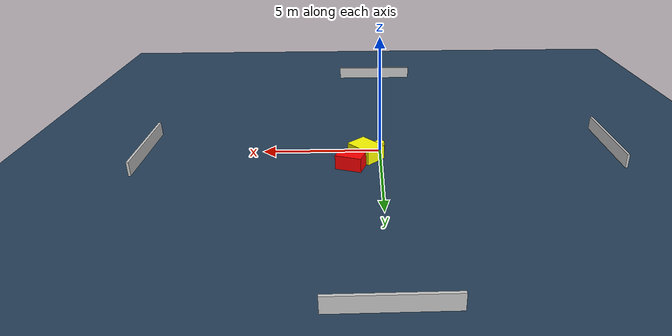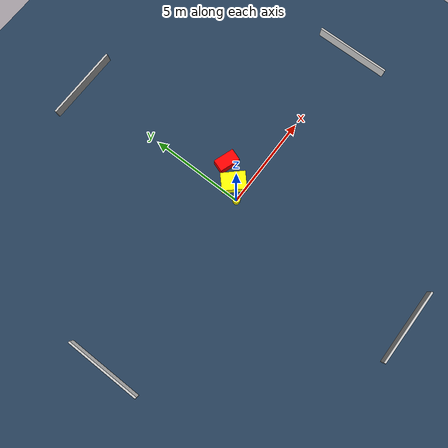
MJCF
<?xml version="1.0" ?>
<mujoco model="generated_environment">
  <option timestep="0.01" integrator="RK4" cone="elliptic"/>
  <default>
    <geom density="1"/>
  </default>
  <asset>
    <texture builtin="gradient" height="3072" name="skybox" rgb1="0.3 0.5 0.7" rgb2="0 0 0" type="skybox" width="512"/>
    <texture builtin="checker" height="300" name="groundplane" rgb1="0.2 0.3 0.4" rgb2="0.1 0.2 0.3" type="2d" width="300"/>
    <material name="groundplane" reflectance="0.2" texrepeat="5 5" texture="groundplane"/>
  </asset>
  <worldbody>
    <light dir="0 0 -1" directional="true" pos="0 0 1.5"/>
    <geom condim="3" friction="0.5 0.005 0.001" material="groundplane" name="floor" pos="0 0 0" size="0 0 0.05" type="plane"/>
    <body name="walls">
      <geom name="wall_1" condim="4" pos="-10.0 0.0 0.3" rgba="0.800000011920929 0.800000011920929 0.800000011920929 1.0" size="0.05 2.0 0.3" type="box"/>
      <geom name="wall_2" condim="4" pos="10.0 0.0 0.3" rgba="0.800000011920929 0.800000011920929 0.800000011920929 1.0" size="0.05 2.0 0.3" type="box"/>
      <geom name="wall_3" condim="4" pos="0.0 -10.0 0.3" rgba="0.800000011920929 0.800000011920929 0.800000011920929 1.0" size="2.0 0.05 0.3" type="box"/>
      <geom name="wall_4" condim="4" pos="0.0 10.0 0.3" rgba="0.800000011920929 0.800000011920929 0.800000011920929 1.0" size="2.0 0.05 0.3" type="box"/>
    </body>
    <body name="robot">
      <joint name="joint_x" type="slide" pos="0 0 0" axis="1 0 0"/>
      <joint name="joint_y" type="slide" pos="0 0 0" axis="0 1 0"/>
      <geom name="robot" type="cylinder" pos="0.0 0.0 0.2" size="0.2 0.2 0.0" mass="5.0" friction="1.0 0.005 0.0001" condim="4" rgba="1.0 1.0 0.0 1.0"/>
    </body>
    <body name="obstacle_1_movable">
      <geom name="obstacle_1_movable" condim="4" pos="0.615435793591734 0.6455735899733296 0.3" euler="0 0 133.0188527488754" friction="0.0 0.005 0.001" rgba="1.0 1.0 0.0 1.0" size="0.6284575486155012 0.4615568245822603 0.3" type="box" mass="0.1"/>
      <joint type="free"/>
    </body>
    <body name="obstacle_2_static">
      <geom name="obstacle_2_static" condim="4" pos="1.2450747608159052 1.5500526319774757 0.3" euler="0 0 160.93144858879728" friction="0.0 0.005 0.001" rgba="1.0 0.0 0.0 1.0" size="0.5512670626334989 0.3226994070056222 0.3" type="box"/>
    </body>
  </worldbody>
  <actuator>
    <motor name="actuator_x" joint="joint_x" gear="1" ctrlrange="-1 1"/>
    <motor name="actuator_y" joint="joint_y" gear="1" ctrlrange="-1 1"/>
  </actuator>
</mujoco>
